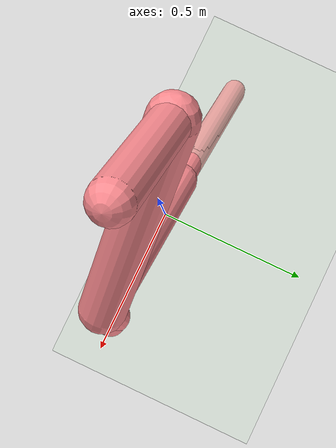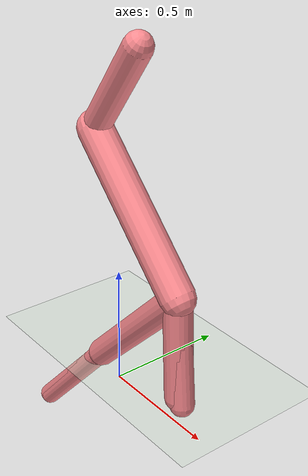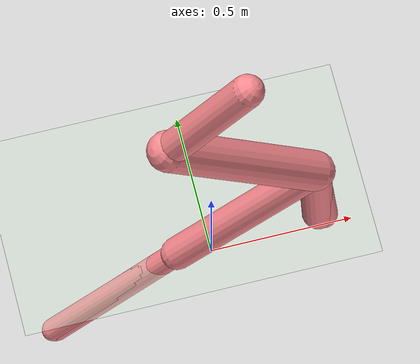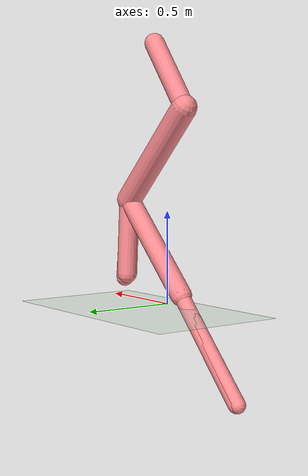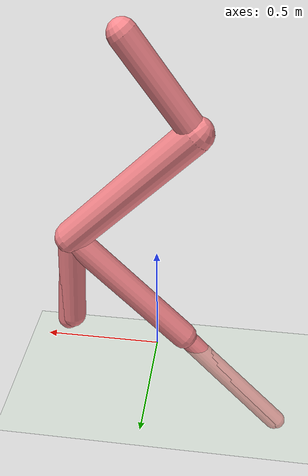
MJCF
<mujoco model="hopper">
  <compiler angle="degree" coordinate="global" inertiafromgeom="true"/>
  <default>
    <joint armature="1" damping="1" limited="true"/>
    <geom conaffinity="1" condim="1" contype="1" margin="0.001" rgba=".98 .54 .56 1." solimp=".8 .8 .01" solref=".02 1"/>
    <motor ctrllimited="true" ctrlrange="-.4 .4"/>
  </default>
  <option integrator="RK4" timestep="0.002"/>
  <visual>
    <headlight ambient=".1 .1 .1" diffuse=".6 .6 .6" specular="0.3 0.3 0.3"/>
    <map znear=".01"/>
    <quality shadowsize="16384"/>
  </visual>
  <worldbody>
    <light cutoff="100" diffuse="1 1 1" dir="-1 0 -1.3" directional="true" exponent="1" pos="1 0 1.3" specular=".1 .1 .1" castshadow="true"/>
    <geom conaffinity="1" condim="3" name="floor" pos="0 0 0" rgba="0.8 0.9 0.8 1" size="200 200 .125" type="plane" material="grid_new"/>
    <body name="0" pos="0 0 1.25">
      <camera name="track" mode="trackcom" pos="0 -3 1" xyaxes="1 0 0 0 0 1"/>
      <joint armature="0" axis="1 0 0" damping="0" limited="false" name="rootx" pos="0 0 0" stiffness="0" type="slide"/>
      <joint armature="0" axis="0 0 1" damping="0" limited="false" name="rootz" pos="0 0 0" ref="1.25" stiffness="0" type="slide"/>
      <joint armature="0" axis="0 1 0" damping="0" limited="false" name="0_joint" pos="0 0 1.25" stiffness="0" type="hinge"/>
      <geom friction="0.9" fromto="0.114997 0 1.407361 -0.144624 0 1.052096" size="0.055467" type="capsule"/>
      <body name="1" pos="-0.144624 0 1.052096">
        <joint axis="0 -1 0" name="1_joint" pos="-0.144624 0 1.052096" range="-360 360" type="hinge"/>
        <geom friction="2.0" fromto="-0.144627 0 1.0521 0.354997 0 0.552429" size="0.069377" type="capsule"/>
        <body name="11" pos="0.354997 0 0.552429">
          <joint axis="0 -1 0" name="11_joint" pos="0.354997 0 0.552429" range="-360 360" type="hinge"/>
          <geom friction="2.0" fromto="0.360546 0 0.558197 -0.120898 0 0.057699" size="0.057911" type="capsule"/>
          <body name="111" pos="-0.120898 0 0.057699">
            <joint axis="0 -1 0" name="111_joint" pos="-0.120898 0 0.057699" range="-360 360" type="hinge"/>
            <geom friction="2.0" fromto="-0.117161 0 0.06178 -0.577973 0 -0.441489" size="0.041424" type="capsule"/>
          </body>
          <body name="211" pos="-0.120898 0 0.057699">
            <joint axis="0 -1 0" name="211_joint" pos="-0.120898 0 0.057699" range="-360 360" type="hinge"/>
            <geom friction="2.0" fromto="-0.119049 0 0.059773 -0.566296 0 -0.441962" size="0.043358" type="capsule"/>
          </body>
        </body>
        <body name="21" pos="0.354997 0 0.552429">
          <joint axis="0 -1 0" name="21_joint" pos="0.354997 0 0.552429" range="-360 360" type="hinge"/>
          <geom friction="2.0" fromto="0.354996 0 0.552445 0.378623 0 0.127467" size="0.056195" type="capsule"/>
        </body>
        <body name="31" pos="0.354997 0 0.552429">
          <joint axis="0 -1 0" name="31_joint" pos="0.354997 0 0.552429" range="-360 360" type="hinge"/>
          <geom friction="2.0" fromto="0.354487 0 0.557653 0.398641 0 0.105521" size="0.049227" type="capsule"/>
        </body>
      </body>
    </body>
  </worldbody>
  <actuator>
    <motor ctrllimited="true" ctrlrange="-1.0 1.0" gear="272.653301" joint="1_joint" name="1_joint"/>
    <motor ctrllimited="true" ctrlrange="-1.0 1.0" gear="306.769412" joint="11_joint" name="11_joint"/>
    <motor ctrllimited="true" ctrlrange="-1.0 1.0" gear="324.632092" joint="21_joint" name="21_joint"/>
    <motor ctrllimited="true" ctrlrange="-1.0 1.0" gear="196.935794" joint="111_joint" name="111_joint"/>
    <motor ctrllimited="true" ctrlrange="-1.0 1.0" gear="380.987962" joint="31_joint" name="31_joint"/>
    <motor ctrllimited="true" ctrlrange="-1.0 1.0" gear="215.715588" joint="211_joint" name="211_joint"/>
  </actuator>
  <asset>
    <texture type="skybox" builtin="gradient" rgb1=".4 .5 .6" rgb2="0 0 0" width="100" height="100"/>
    <texture builtin="flat" height="1278" mark="cross" markrgb="1 1 1" name="texgeom" random="0.01" rgb1="0.8 0.6 0.4" rgb2="0.8 0.6 0.4" type="cube" width="127"/>
    <texture builtin="checker" height="100" name="texplane" rgb1="0 0 0" rgb2="0.8 0.8 0.8" type="2d" width="100"/>
    <material name="MatPlane" reflectance="0.5" shininess="1" specular="1" texrepeat="60 60" texture="texplane"/>
    <material name="geom" texture="texgeom" texuniform="true"/>
    <texture name="grid_new" type="2d" builtin="checker" rgb1=".1 .3 .2" rgb2=".2 .4 .3" width="1000" height="1000" mark="none" markrgb=".8 .6 .4"/>
    <material name="grid_new" texture="grid_new" texrepeat="0.2 0.2" texuniform="true" reflectance=".2"/>
  </asset>
</mujoco>
